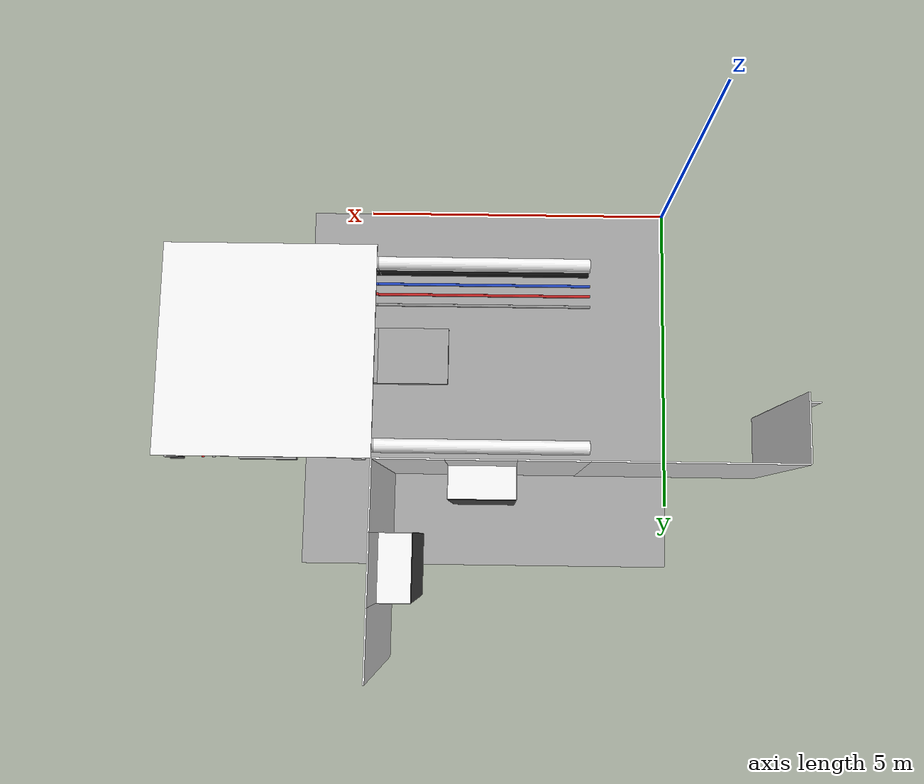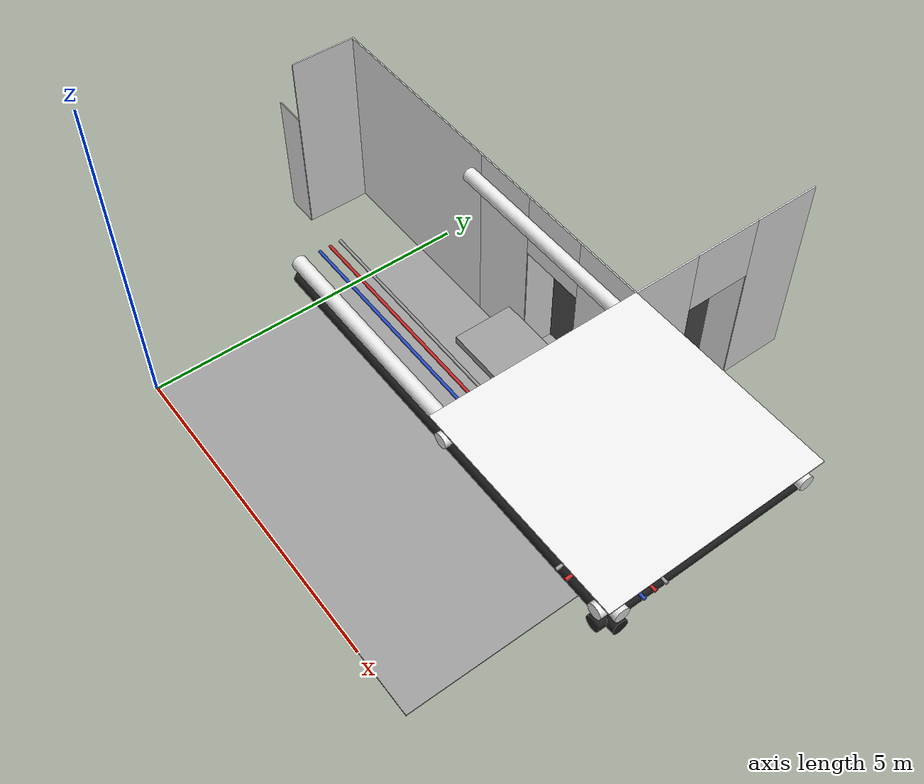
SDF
<sdf version="1.6">
 <world name="default">
  <model name="wall_front_0_1_0_2">
   <static>1</static>
   <pose>0.0 4.5 1.5 0.0 0.0 0.0</pose>
   <link name="link">
    <collision name="collision"><geometry><box><size>3.0 0.02 3.0</size></box></geometry></collision>
    <visual name="visual">
     <material>
      <script><name>Gazebo/White</name><uri>file://media/materials/scripts/gazebo.material</uri></script>
     </material>
     <geometry><box><size>3.0 0.02 3.0</size></box></geometry>
    </visual>
   </link>
  </model>
  <model name="wall_left_front_left_0_1_0_2">
   <static>1</static>
   <pose>-1.5 4.0 1.5 0.0 0.0 1.57</pose>
   <link name="link">
    <collision name="collision"><geometry><box><size>1.0 0.02 3.0</size></box></geometry></collision>
    <visual name="visual">
     <material>
      <script><name>Gazebo/White</name><uri>file://media/materials/scripts/gazebo.material</uri></script>
     </material>
     <geometry><box><size>1.0 0.02 3.0</size></box></geometry>
    </visual>
   </link>
  </model>
  <model name="wall_left_inside_left_0_1_0_2">
   <static>1</static>
   <pose>-1.75 3.5 1.0 0.0 0.0 0.0</pose>
   <link name="link">
    <collision name="collision"><geometry><box><size>0.5 0.02 2</size></box></geometry></collision>
    <visual name="visual">
     <material>
      <script><name>Gazebo/White</name><uri>file://media/materials/scripts/gazebo.material</uri></script>
     </material>
     <geometry><box><size>0.5 0.02 2</size></box></geometry>
    </visual>
   </link>
  </model>
  <model name="ceiling_1_1_1_2_1">
   <pose>4.0 3.0 2.55 0.0 0.0 -1.57</pose>
   <link name="link_1">
    <visual name="visual">
     <geometry><box><size>0.8 1 0.1</size></box></geometry>
     <material>
      <script><uri>file://media/materials/scripts/gazebo.material</uri><name>Gazebo/Grey</name></script>
     </material>
    </visual>
    <collision name="collision"><geometry><box><size>0.8 1 0.1</size></box></geometry></collision>
   </link>
   <static>1</static>
  </model>
  <model name="white_pipe_left_1_1_0_1">
   <static>1</static>
   <pose>3.0 3.0 2.76 0.0 0.0 -1.57</pose>
   <link name="link_0">
    <visual name="visual">
     <pose>-1.3 0 0 1.57 0 0</pose>
     <geometry><cylinder><radius>0.1</radius><length>3.0</length></cylinder></geometry>
     <material>
      <script><uri>file://media/materials/scripts/gazebo.material</uri><name>Gazebo/White</name></script>
     </material>
    </visual>
    <collision name="collision">
     <pose>-1.3 0 0 1.57 0 0</pose>
     <geometry><cylinder><radius>0.1</radius><length>3.0</length></cylinder></geometry>
    </collision>
   </link>
  </model>
  <model name="white_pipe_right_1_1_0_1">
   <static>1</static>
   <pose>3.0 3.0 2.76 0.0 0.0 -1.57</pose>
   <link name="link_0">
    <visual name="visual">
     <pose>1.3 0 0 1.57 0 0</pose>
     <geometry><cylinder><radius>0.1</radius><length>3.0</length></cylinder></geometry>
     <material>
      <script><uri>file://media/materials/scripts/gazebo.material</uri><name>Gazebo/White</name></script>
     </material>
    </visual>
    <collision name="collision">
     <pose>1.3 0 0 1.57 0 0</pose>
     <geometry><cylinder><radius>0.1</radius><length>3.0</length></cylinder></geometry>
    </collision>
   </link>
  </model>
  <model name="black_pipe_right_1_1_0_1">
   <static>1</static>
   <pose>3.0 3.0 2.76 0.0 0.0 -1.57</pose>
   <link name="link_0">
    <visual name="visual">
     <pose>1.3 0 -0.25 1.57 0 0</pose>
     <geometry><cylinder><radius>0.1</radius><length>3.0</length></cylinder></geometry>
     <material>
      <script><uri>file://media/materials/scripts/gazebo.material</uri><name>Gazebo/Black</name></script>
     </material>
    </visual>
    <collision name="collision">
     <pose>1.3 0 -0.25 1.57 0 0</pose>
     <geometry><cylinder><radius>0.1</radius><length>3.0</length></cylinder></geometry>
    </collision>
   </link>
  </model>
  <model name="grey_pipe_right_1_1_0_1">
   <static>1</static>
   <pose>3.0 3.0 2.76 0.0 0.0 -1.57</pose>
   <link name="link_0">
    <visual name="visual">
     <pose>0.7 0 0 1.57 0 0</pose>
     <geometry><cylinder><radius>0.02</radius><length>3.0</length></cylinder></geometry>
     <material>
      <script><uri>file://media/materials/scripts/gazebo.material</uri><name>Gazebo/Grey</name></script>
     </material>
    </visual>
    <collision name="collision">
     <pose>0.7 0 0 1.57 0 0</pose>
     <geometry><cylinder><radius>0.02</radius><length>3.0</length></cylinder></geometry>
    </collision>
   </link>
  </model>
  <model name="red_pipe_right_1_1_0_1">
   <static>1</static>
   <pose>3.0 3.0 2.76 0.0 0.0 -1.57</pose>
   <link name="link_0">
    <visual name="visual">
     <pose>0.85 0 0 1.57 0 0</pose>
     <geometry><cylinder><radius>0.02</radius><length>3.0</length></cylinder></geometry>
     <material>
      <script><uri>file://media/materials/scripts/gazebo.material</uri><name>Gazebo/Red</name></script>
     </material>
    </visual>
    <collision name="collision">
     <pose>0.85 0 0 1.57 0 0</pose>
     <geometry><cylinder><radius>0.02</radius><length>3.0</length></cylinder></geometry>
    </collision>
   </link>
  </model>
  <model name="blue_pipe_right_1_1_0_1">
   <static>1</static>
   <pose>3.0 3.0 2.76 0.0 0.0 -1.57</pose>
   <link name="link_0">
    <visual name="visual">
     <pose>1 0 0 1.57 0 0</pose>
     <geometry><cylinder><radius>0.02</radius><length>3.0</length></cylinder></geometry>
     <material>
      <script><uri>file://media/materials/scripts/gazebo.material</uri><name>Gazebo/Blue</name></script>
     </material>
    </visual>
    <collision name="collision">
     <pose>1 0 0 1.57 0 0</pose>
     <geometry><cylinder><radius>0.02</radius><length>3.0</length></cylinder></geometry>
    </collision>
   </link>
  </model>
  <model name="wall_left_front_left_1_1_0_1">
   <static>1</static>
   <pose>4.0 4.5 1.5 0.0 0.0 0.0</pose>
   <link name="link">
    <collision name="collision"><geometry><box><size>1.0 0.02 3.0</size></box></geometry></collision>
    <visual name="visual">
     <material>
      <script><name>Gazebo/White</name><uri>file://media/materials/scripts/gazebo.material</uri></script>
     </material>
     <geometry><box><size>1.0 0.02 3.0</size></box></geometry>
    </visual>
   </link>
  </model>
  <model name="wall_left_front_right_1_1_0_1">
   <static>1</static>
   <pose>2.0 4.5 1.5 0.0 0.0 0.0</pose>
   <link name="link">
    <collision name="collision"><geometry><box><size>1.0 0.02 3.0</size></box></geometry></collision>
    <visual name="visual">
     <material>
      <script><name>Gazebo/White</name><uri>file://media/materials/scripts/gazebo.material</uri></script>
     </material>
     <geometry><box><size>1.0 0.02 3.0</size></box></geometry>
    </visual>
   </link>
  </model>
  <model name="wall_left_front_up_1_1_0_1">
   <static>1</static>
   <pose>3.0 4.5 2.5 0.0 0.0 0.0</pose>
   <link name="link">
    <collision name="collision"><geometry><box><size>1.0 0.02 1.0</size></box></geometry></collision>
    <visual name="visual">
     <material>
      <script><name>Gazebo/White</name><uri>file://media/materials/scripts/gazebo.material</uri></script>
     </material>
     <geometry><box><size>1.0 0.02 1.0</size></box></geometry>
    </visual>
   </link>
  </model>
  <model name="wall_left_inside_back_1_1_0_1">
   <static>1</static>
   <pose>3.0 5.0 1.0 0.0 0.0 0.0</pose>
   <link name="link">
    <collision name="collision"><geometry><box><size>1 0.02 2</size></box></geometry></collision>
    <visual name="visual">
     <material>
      <script><name>Gazebo/DarkGrey</name><uri>file://media/materials/scripts/gazebo.material</uri></script>
     </material>
     <geometry><box><size>1 0.02 2</size></box></geometry>
    </visual>
   </link>
  </model>
  <model name="wall_left_inside_left_1_1_0_1">
   <static>1</static>
   <pose>3.5 4.75 1.0 0.0 0.0 -1.57</pose>
   <link name="link">
    <collision name="collision"><geometry><box><size>0.5 0.02 2</size></box></geometry></collision>
    <visual name="visual">
     <material>
      <script><name>Gazebo/White</name><uri>file://media/materials/scripts/gazebo.material</uri></script>
     </material>
     <geometry><box><size>0.5 0.02 2</size></box></geometry>
    </visual>
   </link>
  </model>
  <model name="wall_left_inside_right_1_1_0_1">
   <static>1</static>
   <pose>2.5 4.75 1.0 0.0 0.0 -1.57</pose>
   <link name="link">
    <collision name="collision"><geometry><box><size>0.5 0.02 2</size></box></geometry></collision>
    <visual name="visual">
     <material>
      <script><name>Gazebo/White</name><uri>file://media/materials/scripts/gazebo.material</uri></script>
     </material>
     <geometry><box><size>0.5 0.02 2</size></box></geometry>
    </visual>
   </link>
  </model>
  <model name="wall_left_inside_top_1_1_0_1">
   <static>1</static>
   <pose>3.0 4.75 2.0 1.57 0.0 0.0</pose>
   <link name="link">
    <collision name="collision"><geometry><box><size>1 0.02 0.5</size></box></geometry></collision>
    <visual name="visual">
     <material>
      <script><name>Gazebo/White</name><uri>file://media/materials/scripts/gazebo.material</uri></script>
     </material>
     <geometry><box><size>1 0.02 0.5</size></box></geometry>
    </visual>
   </link>
  </model>
  <model name="wall_bottom_1_1_0_1">
   <static>1</static>
   <pose>3.0 3.0 0.0 0.0 0.0 -1.57</pose>
   <link name="link">
    <collision name="collision"><geometry><box><size>6.0 6.0 0.02</size></box></geometry></collision>
    <visual name="visual">
     <material>
      <script><name>Gazebo/Grey</name><uri>file://media/materials/scripts/gazebo.material</uri></script>
     </material>
     <geometry><box><size>6.0 6.0 0.02</size></box></geometry>
    </visual>
   </link>
  </model>
  <model name="wall_top_2_1_0_3">
   <static>1</static>
   <pose>6.0 3.0 3.0 1.57 0.0 -1.57</pose>
   <link name="link">
    <collision name="collision"><geometry><box><size>3.0 0.02 3.0</size></box></geometry></collision>
    <visual name="visual">
     <material>
      <script><name>Gazebo/White</name><uri>file://media/materials/scripts/gazebo.material</uri></script>
     </material>
     <geometry><box><size>3.0 0.02 3.0</size></box></geometry>
    </visual>
   </link>
  </model>
  <model name="ceiling_1_2_1_0_3">
   <pose>5.0 3.0 2.55 0.0 0.0 -1.57</pose>
   <link name="link_1">
    <visual name="visual">
     <geometry><box><size>0.8 1 0.1</size></box></geometry>
     <material>
      <script><uri>file://media/materials/scripts/gazebo.material</uri><name>Gazebo/Grey</name></script>
     </material>
    </visual>
    <collision name="collision"><geometry><box><size>0.8 1 0.1</size></box></geometry></collision>
   </link>
   <static>1</static>
  </model>
  <model name="ceiling_1_2_1_1_3">
   <pose>6.0 4.0 2.55 0.0 0.0 0.0</pose>
   <link name="link_1">
    <visual name="visual">
     <geometry><box><size>0.8 1 0.1</size></box></geometry>
     <material>
      <script><uri>file://media/materials/scripts/gazebo.material</uri><name>Gazebo/Grey</name></script>
     </material>
    </visual>
    <collision name="collision"><geometry><box><size>0.8 1 0.1</size></box></geometry></collision>
   </link>
   <static>1</static>
  </model>
  <model name="white_pipe_left_2_1_0_3">
   <static>1</static>
   <pose>6.0 3.0 2.76 0.0 0.0 -1.57</pose>
   <link name="link_0">
    <visual name="visual">
     <pose>-1.3 0 0 1.57 0 0</pose>
     <geometry><cylinder><radius>0.1</radius><length>3.0</length></cylinder></geometry>
     <material>
      <script><uri>file://media/materials/scripts/gazebo.material</uri><name>Gazebo/White</name></script>
     </material>
    </visual>
    <collision name="collision">
     <pose>-1.3 0 0 1.57 0 0</pose>
     <geometry><cylinder><radius>0.1</radius><length>3.0</length></cylinder></geometry>
    </collision>
   </link>
  </model>
  <model name="white_pipe_right_2_1_0_3">
   <static>1</static>
   <pose>6.0 3.0 2.76 0.0 0.0 -1.57</pose>
   <link name="link_0">
    <visual name="visual">
     <pose>1.3 0 0 1.57 0 0</pose>
     <geometry><cylinder><radius>0.1</radius><length>3.0</length></cylinder></geometry>
     <material>
      <script><uri>file://media/materials/scripts/gazebo.material</uri><name>Gazebo/White</name></script>
     </material>
    </visual>
    <collision name="collision">
     <pose>1.3 0 0 1.57 0 0</pose>
     <geometry><cylinder><radius>0.1</radius><length>3.0</length></cylinder></geometry>
    </collision>
   </link>
  </model>
  <model name="black_pipe_right_2_1_0_3">
   <static>1</static>
   <pose>6.0 3.0 2.76 0.0 0.0 -1.57</pose>
   <link name="link_0">
    <visual name="visual">
     <pose>1.3 0 -0.25 1.57 0 0</pose>
     <geometry><cylinder><radius>0.1</radius><length>3.0</length></cylinder></geometry>
     <material>
      <script><uri>file://media/materials/scripts/gazebo.material</uri><name>Gazebo/Black</name></script>
     </material>
    </visual>
    <collision name="collision">
     <pose>1.3 0 -0.25 1.57 0 0</pose>
     <geometry><cylinder><radius>0.1</radius><length>3.0</length></cylinder></geometry>
    </collision>
   </link>
  </model>
  <model name="grey_pipe_right_2_1_0_3">
   <static>1</static>
   <pose>6.0 3.0 2.76 0.0 0.0 -1.57</pose>
   <link name="link_0">
    <visual name="visual">
     <pose>0.7 0 0 1.57 0 0</pose>
     <geometry><cylinder><radius>0.02</radius><length>3.0</length></cylinder></geometry>
     <material>
      <script><uri>file://media/materials/scripts/gazebo.material</uri><name>Gazebo/Grey</name></script>
     </material>
    </visual>
    <collision name="collision">
     <pose>0.7 0 0 1.57 0 0</pose>
     <geometry><cylinder><radius>0.02</radius><length>3.0</length></cylinder></geometry>
    </collision>
   </link>
  </model>
  <model name="red_pipe_right_2_1_0_3">
   <static>1</static>
   <pose>6.0 3.0 2.76 0.0 0.0 -1.57</pose>
   <link name="link_0">
    <visual name="visual">
     <pose>0.85 0 0 1.57 0 0</pose>
     <geometry><cylinder><radius>0.02</radius><length>3.0</length></cylinder></geometry>
     <material>
      <script><uri>file://media/materials/scripts/gazebo.material</uri><name>Gazebo/Red</name></script>
     </material>
    </visual>
    <collision name="collision">
     <pose>0.85 0 0 1.57 0 0</pose>
     <geometry><cylinder><radius>0.02</radius><length>3.0</length></cylinder></geometry>
    </collision>
   </link>
  </model>
  <model name="blue_pipe_right_2_1_0_3">
   <static>1</static>
   <pose>6.0 3.0 2.76 0.0 0.0 -1.57</pose>
   <link name="link_0">
    <visual name="visual">
     <pose>1 0 0 1.57 0 0</pose>
     <geometry><cylinder><radius>0.02</radius><length>3.0</length></cylinder></geometry>
     <material>
      <script><uri>file://media/materials/scripts/gazebo.material</uri><name>Gazebo/Blue</name></script>
     </material>
    </visual>
    <collision name="collision">
     <pose>1 0 0 1.57 0 0</pose>
     <geometry><cylinder><radius>0.02</radius><length>3.0</length></cylinder></geometry>
    </collision>
   </link>
  </model>
  <model name="white_pipe_left_1_2_1_0_3">
   <static>1</static>
   <pose>6.0 3.0 2.76 0.0 0.0 0.0</pose>
   <link name="link_0">
    <visual name="visual">
     <pose>-1.3 0 0 1.57 0 0</pose>
     <geometry><cylinder><radius>0.1</radius><length>3.0</length></cylinder></geometry>
     <material>
      <script><uri>file://media/materials/scripts/gazebo.material</uri><name>Gazebo/White</name></script>
     </material>
    </visual>
    <collision name="collision">
     <pose>-1.3 0 0 1.57 0 0</pose>
     <geometry><cylinder><radius>0.1</radius><length>3.0</length></cylinder></geometry>
    </collision>
   </link>
  </model>
  <model name="white_pipe_right_1_2_1_0_3">
   <static>1</static>
   <pose>6.0 3.0 2.76 0.0 0.0 0.0</pose>
   <link name="link_0">
    <visual name="visual">
     <pose>1.3 0 0 1.57 0 0</pose>
     <geometry><cylinder><radius>0.1</radius><length>3.0</length></cylinder></geometry>
     <material>
      <script><uri>file://media/materials/scripts/gazebo.material</uri><name>Gazebo/White</name></script>
     </material>
    </visual>
    <collision name="collision">
     <pose>1.3 0 0 1.57 0 0</pose>
     <geometry><cylinder><radius>0.1</radius><length>3.0</length></cylinder></geometry>
    </collision>
   </link>
  </model>
  <model name="black_pipe_right_1_2_1_0_3">
   <static>1</static>
   <pose>6.0 3.0 2.76 0.0 0.0 0.0</pose>
   <link name="link_0">
    <visual name="visual">
     <pose>1.3 0 -0.25 1.57 0 0</pose>
     <geometry><cylinder><radius>0.1</radius><length>3.0</length></cylinder></geometry>
     <material>
      <script><uri>file://media/materials/scripts/gazebo.material</uri><name>Gazebo/Black</name></script>
     </material>
    </visual>
    <collision name="collision">
     <pose>1.3 0 -0.25 1.57 0 0</pose>
     <geometry><cylinder><radius>0.1</radius><length>3.0</length></cylinder></geometry>
    </collision>
   </link>
  </model>
  <model name="grey_pipe_right_1_2_1_0_3">
   <static>1</static>
   <pose>6.0 3.0 2.76 0.0 0.0 0.0</pose>
   <link name="link_0">
    <visual name="visual">
     <pose>0.7 0 0 1.57 0 0</pose>
     <geometry><cylinder><radius>0.02</radius><length>3.0</length></cylinder></geometry>
     <material>
      <script><uri>file://media/materials/scripts/gazebo.material</uri><name>Gazebo/Grey</name></script>
     </material>
    </visual>
    <collision name="collision">
     <pose>0.7 0 0 1.57 0 0</pose>
     <geometry><cylinder><radius>0.02</radius><length>3.0</length></cylinder></geometry>
    </collision>
   </link>
  </model>
  <model name="red_pipe_right_1_2_1_0_3">
   <static>1</static>
   <pose>6.0 3.0 2.76 0.0 0.0 0.0</pose>
   <link name="link_0">
    <visual name="visual">
     <pose>0.85 0 0 1.57 0 0</pose>
     <geometry><cylinder><radius>0.02</radius><length>3.0</length></cylinder></geometry>
     <material>
      <script><uri>file://media/materials/scripts/gazebo.material</uri><name>Gazebo/Red</name></script>
     </material>
    </visual>
    <collision name="collision">
     <pose>0.85 0 0 1.57 0 0</pose>
     <geometry><cylinder><radius>0.02</radius><length>3.0</length></cylinder></geometry>
    </collision>
   </link>
  </model>
  <model name="wall_left_front_left_2_2_0_2">
   <static>1</static>
   <pose>4.5 7.0 1.5 0.0 0.0 1.57</pose>
   <link name="link">
    <collision name="collision"><geometry><box><size>1.0 0.02 3.0</size></box></geometry></collision>
    <visual name="visual">
     <material>
      <script><name>Gazebo/White</name><uri>file://media/materials/scripts/gazebo.material</uri></script>
     </material>
     <geometry><box><size>1.0 0.02 3.0</size></box></geometry>
    </visual>
   </link>
  </model>
  <model name="wall_left_front_right_2_2_0_2">
   <static>1</static>
   <pose>4.5 5.0 1.5 0.0 0.0 1.57</pose>
   <link name="link">
    <collision name="collision"><geometry><box><size>1.0 0.02 3.0</size></box></geometry></collision>
    <visual name="visual">
     <material>
      <script><name>Gazebo/White</name><uri>file://media/materials/scripts/gazebo.material</uri></script>
     </material>
     <geometry><box><size>1.0 0.02 3.0</size></box></geometry>
    </visual>
   </link>
  </model>
  <model name="wall_left_front_up_2_2_0_2">
   <static>1</static>
   <pose>4.5 6.0 2.5 0.0 0.0 1.57</pose>
   <link name="link">
    <collision name="collision"><geometry><box><size>1.0 0.02 1.0</size></box></geometry></collision>
    <visual name="visual">
     <material>
      <script><name>Gazebo/White</name><uri>file://media/materials/scripts/gazebo.material</uri></script>
     </material>
     <geometry><box><size>1.0 0.02 1.0</size></box></geometry>
    </visual>
   </link>
  </model>
  <model name="wall_left_inside_back_2_2_0_2">
   <static>1</static>
   <pose>4.0 6.0 1.0 0.0 0.0 1.57</pose>
   <link name="link">
    <collision name="collision"><geometry><box><size>1 0.02 2</size></box></geometry></collision>
    <visual name="visual">
     <material>
      <script><name>Gazebo/DarkGrey</name><uri>file://media/materials/scripts/gazebo.material</uri></script>
     </material>
     <geometry><box><size>1 0.02 2</size></box></geometry>
    </visual>
   </link>
  </model>
  <model name="wall_left_inside_left_2_2_0_2">
   <static>1</static>
   <pose>4.25 6.5 1.0 0.0 0.0 0.0</pose>
   <link name="link">
    <collision name="collision"><geometry><box><size>0.5 0.02 2</size></box></geometry></collision>
    <visual name="visual">
     <material>
      <script><name>Gazebo/White</name><uri>file://media/materials/scripts/gazebo.material</uri></script>
     </material>
     <geometry><box><size>0.5 0.02 2</size></box></geometry>
    </visual>
   </link>
  </model>
  <model name="wall_left_inside_right_2_2_0_2">
   <static>1</static>
   <pose>4.25 5.5 1.0 0.0 0.0 0.0</pose>
   <link name="link">
    <collision name="collision"><geometry><box><size>0.5 0.02 2</size></box></geometry></collision>
    <visual name="visual">
     <material>
      <script><name>Gazebo/White</name><uri>file://media/materials/scripts/gazebo.material</uri></script>
     </material>
     <geometry><box><size>0.5 0.02 2</size></box></geometry>
    </visual>
   </link>
  </model>
  <model name="wall_left_inside_top_2_2_0_2">
   <static>1</static>
   <pose>4.25 6.0 2.0 1.57 0.0 1.57</pose>
   <link name="link">
    <collision name="collision"><geometry><box><size>1 0.02 0.5</size></box></geometry></collision>
    <visual name="visual">
     <material>
      <script><name>Gazebo/White</name><uri>file://media/materials/scripts/gazebo.material</uri></script>
     </material>
     <geometry><box><size>1 0.02 0.5</size></box></geometry>
    </visual>
   </link>
  </model>
 </world>
</sdf>
